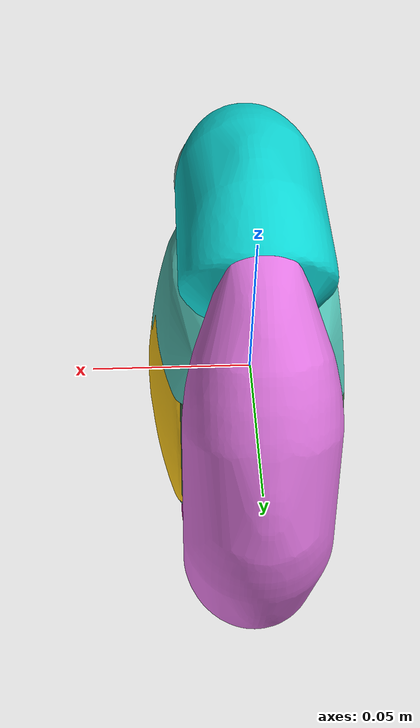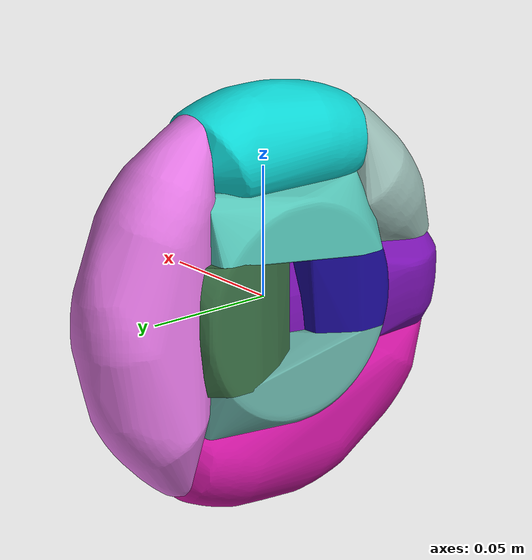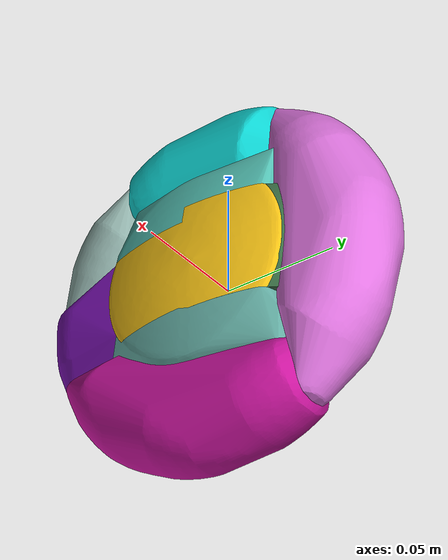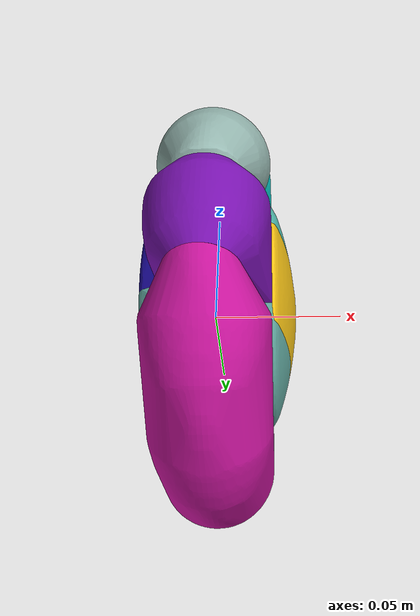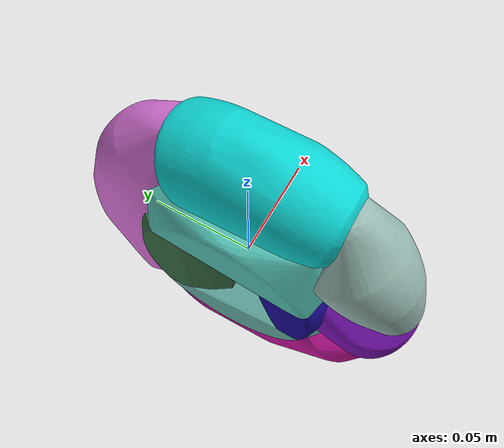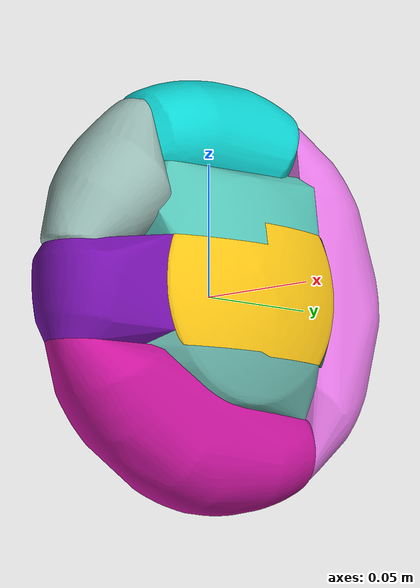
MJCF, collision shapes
<mujoco model="wheel3">
  <default>
    <default class="visual">
      <geom group="2" type="mesh" contype="0" conaffinity="0"/>
    </default>
    <default class="collision">
      <geom group="3" type="mesh"/>
    </default>
  </default>
  <asset>
    <material name="white_rubber.003" specular="0.5" shininess="0.11673613000000001" rgba="0.382509 0.382509 0.382509 1.000000"/>
    <mesh file="wheel3.obj"/>
    <mesh file="wheel3_collision_0.obj"/>
    <mesh file="wheel3_collision_1.obj"/>
    <mesh file="wheel3_collision_2.obj"/>
    <mesh file="wheel3_collision_3.obj"/>
    <mesh file="wheel3_collision_4.obj"/>
    <mesh file="wheel3_collision_5.obj"/>
    <mesh file="wheel3_collision_6.obj"/>
    <mesh file="wheel3_collision_7.obj"/>
    <mesh file="wheel3_collision_8.obj"/>
    <mesh file="wheel3_collision_9.obj"/>
  </asset>
  <worldbody>
    <body name="wheel3">
      <geom material="white_rubber.003" mesh="wheel3" class="visual"/>
      <geom mesh="wheel3_collision_0" rgba="0.875115893361323 0.46074681292672215 0.8768591392824343 1" class="collision"/>
      <geom mesh="wheel3_collision_1" rgba="0.3873279565526344 0.6717463612824193 0.6330861690145992 1" class="collision"/>
      <geom mesh="wheel3_collision_2" rgba="0.46595335115664716 0.0674901956088928 0.6818656231631267 1" class="collision"/>
      <geom mesh="wheel3_collision_3" rgba="0.21520538412722678 0.4178158374918991 0.2572945033315972 1" class="collision"/>
      <geom mesh="wheel3_collision_4" rgba="0.9645910552843866 0.7629716582664899 0.08079816676711027 1" class="collision"/>
      <geom mesh="wheel3_collision_5" rgba="0.7894889054187094 0.07866179010725016 0.6160193581146359 1" class="collision"/>
      <geom mesh="wheel3_collision_6" rgba="0.5912366874866394 0.7217640860653561 0.6945892193594511 1" class="collision"/>
      <geom mesh="wheel3_collision_7" rgba="0.3289421236326986 0.7625962019025173 0.7102108722322701 1" class="collision"/>
      <geom mesh="wheel3_collision_8" rgba="0.09797731296036871 0.03358424534905802 0.5736605837495353 1" class="collision"/>
      <geom mesh="wheel3_collision_9" rgba="0.05105210768698398 0.8267902063930563 0.8210929544808152 1" class="collision"/>
    </body>
  </worldbody>
</mujoco>
